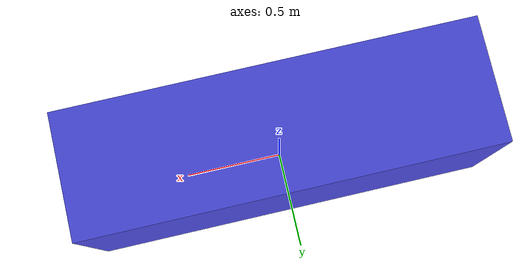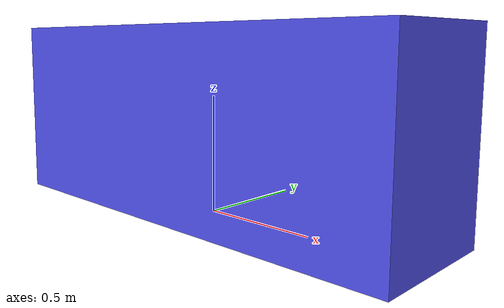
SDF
<!-- ~/TiagoShopAssistant/src/tiago/tiago/models/cash_desk.sdf -->
<sdf version='1.7'>
  <model name='cash_desk'>
    <static>true</static>
    <link name='link'>
      <pose>0 0 0.4 0 0 0</pose>
      <visual name='visual'>
        <geometry><box><size>2.0 0.6 0.8</size></box></geometry>
        <material><ambient>0.2 0.2 0.8 1</ambient><diffuse>0.3 0.3 0.9 1</diffuse></material>
      </visual>
      <collision name='collision'>
        <geometry><box><size>2.0 0.6 0.8</size></box></geometry>
      </collision>
    </link>
  </model>
</sdf>
